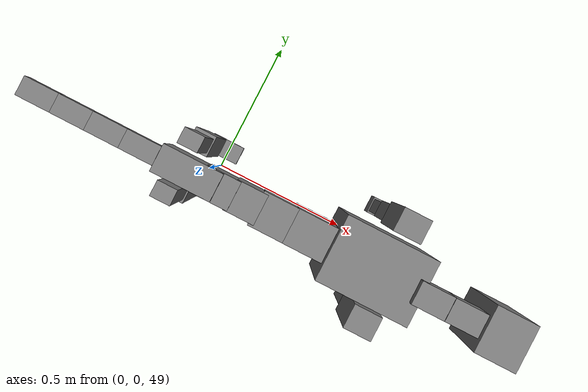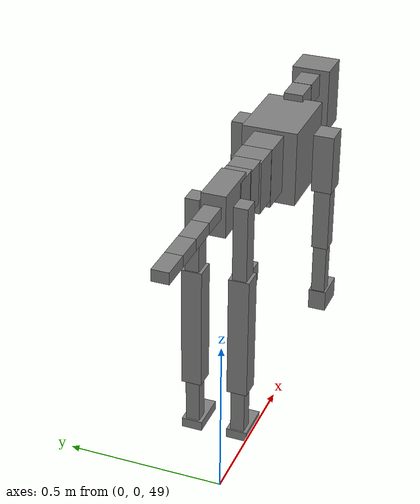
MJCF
<mujoco model="dog">

    <default>
        <joint armature="0.02" stiffness="1" damping="0.2" limited="true"/>
        <geom condim="3" friction="1 0.05 0.05" margin="0.01"/>
        <motor ctrllimited="true" ctrlrange="-1.0 1.0" forcelimited="true" gear="50"/>
    </default>

    <compiler inertiafromgeom="true" angle="radian"/>

    <option timestep="0.016" iterations="50" tolerance="1e-10" solver="Newton" jacobian="dense" cone="pyramidal"/>

    <size nconmax="20000" njmax="60000" nstack="5000000"/>
    <visual>
        <map force="0.1" zfar="30"/>
        <rgba haze="0.15 0.25 0.35 1"/>
        <quality shadowsize="2048"/>
        <global offwidth="800" offheight="800"/>
    </visual>

    <asset>
        <texture type="skybox" builtin="gradient" rgb1="0.3 0.5 0.7" rgb2="0 0 0" width="512" height="512"/>
        <texture name="texplane" type="2d" builtin="checker" rgb1=".2 .3 .4" rgb2=".1 0.15 0.2" width="512" height="512"
                 mark="cross" markrgb=".8 .8 .8"/>
        <texture name="texgeom" type="cube" builtin="flat" mark="cross" width="127" height="1278" rgb1="0.8 0.6 0.4"
                 rgb2="0.8 0.6 0.4" markrgb="1 1 1" random="0.01"/>

        <material name="matplane" reflectance="0.3" texture="texplane" texrepeat="1 1" texuniform="true"/>
        <material name="matgeom" texture="texgeom" texuniform="true" rgba="0.8 0.6 .4 1"/>
    </asset>

    <worldbody>
        <geom name="floor" pos="0 0 0" size="0 0 .25" type="plane" material="matplane" condim="3"/>

        <light directional="false" diffuse=".2 .2 .2" specular="0 0 0" pos="0 0 5" dir="0 0 -1" castshadow="false"/>
        <light mode="targetbodycom" target="torso" directional="false" diffuse=".8 .8 .8" specular="0.3 0.3 0.3"
               pos="0 0 4.0" dir="0 0 -1"/>

        <body name="root" pos="0 0 50">
            <freejoint name="root_1"/>
            <geom type="box" pos="0 0 -0.02" size="0.0774  0.0358  0.063" density="2030"/>

            <body name="spine1" pos="0.054 0 0">
                <joint name="spine1_y" axis="0 1 0" range="0 0.7" limited="true"/>
                <geom type="box" pos="0.02375 0 -0.03" size="0.04375  0.0375  0.05985" density="2030"/>

                <body name="spine2" pos="0.0612 0 0">
                    <joint name="spine2_y" axis="0 1 0" range="-0.15 0.15" limited="true"/>
                    <geom type="box" pos="0.03555  0  -0.04" size="0.04055  0.039  0.06615" density="2030"/>

                    <body name="spine3" pos="0.0730 0 0">
                        <joint name="spine3_y" axis="0 1 0" range="-0.15 0.15" limited="true"/>
                        <geom type="box" pos="0.03555  0  -0.057" size="0.04555  0.0445  0.081" density="2030"/>

                        <body name="spine4" pos="0.0780 0 0">
                            <joint name="spine4_y" axis="0 1 0" range="-0.15 0.15" limited="true"/>
                            <geom type="box" pos="0.05265  0  -0.07" size="0.05265  0.045  0.09135" density="2030"/>

                            <body name="torso" pos="0.1082 0 0">
                                <joint name="torso_y" axis="0 1 0" range="-0.15 0.15" limited="true"/>
                                <geom type="box" pos="0.11925  0  -0.085" size="0.11925  0.085  0.11745"
                                      density="2030"/>

                                <body name="neck1" pos="0.2160  0   0.0180">
                                    <joint name="neck1_y" axis="0 1 0" range="-1.2  -1" limited="true"/>
                                    <geom type="box" pos="0.0423  0  0" size="0.0423  0.03  0.036" density="2325"/>

                                    <body name="neck2" pos="0.0853  0  0">
                                        <joint name="neck2_y" axis="0 1 0" range="0.1  0" limited="true"/>
                                        <geom type="box" pos="0.0423  0  0" size="0.0423  0.03  0.036" density="2325"/>

                                        <body name="head" pos="0.0853  0  0">
                                            <joint name="head_y" axis="0 1 0" range="-0.3  -0.2" limited="true"/>
                                            <geom type="box" pos="0.0531  0  -0.055" size="0.0531  0.06  0.1044"
                                                  density="4030"/>

                                        </body>
                                    </body>
                                </body>

                                <body name="front_shoulder" pos="0.156  0   -0.0480">
                                    <joint name="front_shoulder_y" axis="0 1 0" range="-1 1.5" limited="true"/>
                                    <geom type="box" pos="0 0.13 -0.0664" size="0.0371  0.0317  0.0930" density="1158"/>
                                    <geom type="box" pos="0 -0.13 -0.0664" size="0.0371  0.0317  0.0930"
                                          density="1158"/>

                                    <body name="front_elbow" pos="0  0  -0.1327">
                                        <joint name="front_elbow_y" axis="0 1 0" range="-2 0" limited="true"/>
                                        <geom type="box" pos="0 0.13 -0.1139" size="0.0249  0.0255  0.1139"
                                              density="1081"/>
                                        <geom type="box" pos="0 -0.13 -0.1139" size="0.0249  0.0255  0.1139"
                                              density="1081"/>

                                        <body name="front_wrist" pos="0  0  -0.2279">
                                            <joint name="front_wrist_y" axis="0 1 0" range="-0.2 0" limited="true"/>
                                            <geom type="box" pos="0 0.13 -0.0867" size="0.0190  0.0212  0.0999"
                                                  density="1664"/>
                                            <geom type="box" pos="0 -0.13 -0.0867" size="0.0190  0.0212  0.0999"
                                                  density="1664"/>

                                            <body name="front_finger_end" pos="0  0  -0.1734">
                                                <joint name="front_finger_y" axis="0 1 0" range="-0.4 1"
                                                       limited="true"/>
                                                <geom type="box" pos="0.0272  0.13  -0.0179"
                                                      size="0.0498  0.0272  0.0329" density="1515"/>
                                                <geom type="box" pos="0.0272  -0.13  -0.0179"
                                                      size="0.0498  0.0272  0.0329" density="1515"/>

                                            </body>

                                        </body>
                                    </body>
                                </body>

                            </body>
                        </body>
                    </body>
                </body>
            </body>

            <body name="back_hip" pos="-0.03 0 -0.018">
                <joint name="back_hip_y" axis="0 1 0" range="-1.5 0.3" limited="true"/>
                <geom type="box" pos="0 0.07 -0.1097" size="0.0268  0.0210  0.1325" density="1154"/>
                <geom type="box" pos="0 -0.07 -0.1097" size="0.0268  0.0210  0.1325" density="1154"/>

                <body name="back_knee" pos="0  0  -0.2193">
                    <joint name="back_knee_y" axis="0 1 0" range="0 2.8" limited="true"/>
                    <geom type="box" pos="0 0.07 -0.1729" size="0.0308  0.0304  0.1885" density="1227"/>
                    <geom type="box" pos="0 -0.07 -0.1729" size="0.0308  0.0304  0.1885" density="1227"/>

                    <body name="back_ankle" pos="0  0  -0.3458">
                        <joint name="back_ankle_y" axis="0 1 0" range="-2.2 0" limited="true"/>
                        <geom type="box" pos="0 0.07 -0.0840" size="0.0208  0.0208  0.0952" density="1284"/>
                        <geom type="box" pos="0 -0.07 -0.0840" size="0.0208  0.0208  0.0952" density="1284"/>

                        <body name="back_toe_end" pos="0  0  -0.1679">
                            <joint name="back_toe_y" axis="0 1 0" range="-0.4 1" limited="true"/>
                            <geom type="box" pos="0.0311  0.07  0.0003" size="0.0570  0.0311  0.0147" density="1515"/>
                            <geom type="box" pos="0.0311  -0.07  0.0003" size="0.0570  0.0311  0.0147" density="1515"/>

                        </body>
                    </body>
                </body>
            </body>

            <body name="tail1" pos="-0.074 0 -0.006">
                <joint name="tail1_y" axis="0 1 0" range="-0.2 0.2" limited="true"/>
                <geom type="box" pos="-0.0536  0  0" size="0.045  0.025  0.0175" density="1587"/>

                <body name="tail2" pos="-0.09 0 0">
                    <joint name="tail2_y" axis="0 1 0" range="-0.2 0.2" limited="true"/>
                    <geom type="box" pos="-0.0536  0  0" size="0.045  0.025  0.0175" density="1587"/>

                    <body name="tail3" pos="-0.09 0 0">
                        <joint name="tail3_y" axis="0 1 0" range="-0.2 0.2" limited="true"/>
                        <geom type="box" pos="-0.0536  0  0" size="0.045  0.025  0.0175" density="1587"/>

                        <body name="tail4" pos="-0.09 0 0">
                            <joint name="tail4_y" axis="0 1 0" range="-0.2 0.2" limited="true"/>
                            <geom type="box" pos="-0.0536  0  0" size="0.045  0.025  0.0175" density="1587"/>

                        </body>
                    </body>
                </body>
            </body>
        </body>
    </worldbody>

    <actuator>
        <motor joint="spine1_y" forcerange="-150 150     "/>
        <motor joint="spine2_y" forcerange="-150 150     "/>
        <motor joint="spine3_y" forcerange="-150 150     "/>
        <motor joint="spine4_y" forcerange="-150 150     "/>
        <motor joint="torso_y" forcerange="-150 150     "/>
        <motor joint="neck1_y" forcerange="-100 100       "/>
        <motor joint="neck2_y" forcerange="-100 100       "/>
        <motor joint="head_y" forcerange="-150 150       "/>
        <motor joint="front_shoulder_y" forcerange="-191.63 119.62"/>
        <motor joint="front_elbow_y" forcerange="-180.61 104.58"/>
        <motor joint="front_wrist_y" forcerange="-76.41 92.89"/>
        <motor joint="front_finger_y" forcerange="-48.06 56.86"/>
        <motor joint="back_hip_y" forcerange="-232.39 248.08"/>
        <motor joint="back_knee_y" forcerange="-395.43 246.56"/>
        <motor joint="back_angle_y" forcerange="-156.30 76.14"/>
        <motor joint="back_toe_y" forcerange="-54.97 113.91"/>
        <motor joint="tail1_y" forcerange="-50 50     "/>
        <motor joint="tail2_y" forcerange="-50 50     "/>
        <motor joint="tail3_y" forcerange="-50 50     "/>
        <motor joint="tail4_y" forcerange="-50 50     "/>
    </actuator>
</mujoco>
